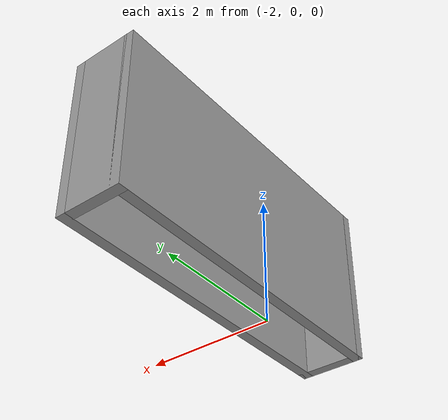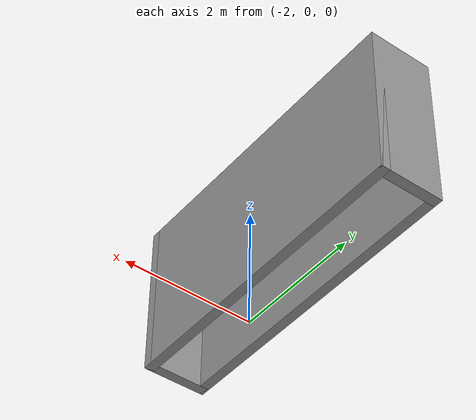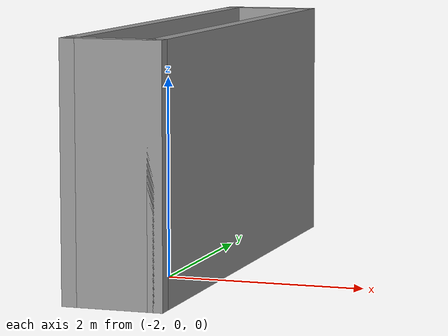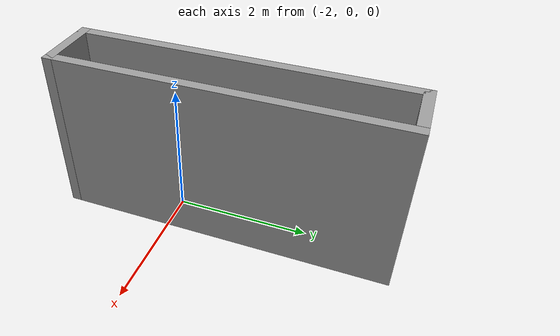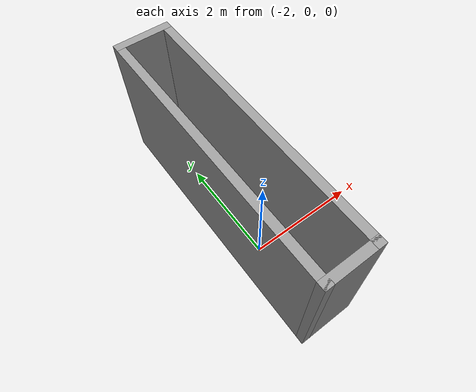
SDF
<?xml version='1.0'?>
<sdf version='1.7'>
  <model name='Shelf2'>
    <pose>-1.22628 0.823445 0 0 -0 0</pose>
    <link name='Wall_49'>
      <collision name='Wall_49_Collision'>
        <geometry>
          <box>
            <size>1 0.15 2.5</size>
          </box>
        </geometry>
        <pose>0 0 1.25 0 -0 0</pose>
      </collision>
      <visual name='Wall_49_Visual'>
        <pose>0 0 1.25 0 -0 0</pose>
        <geometry>
          <box>
            <size>1 0.15 2.5</size>
          </box>
        </geometry>
        <material>
          <script>
            <uri>file://media/materials/scripts/gazebo.material</uri>
            <name>Gazebo/Grey</name>
          </script>
          <ambient>1 1 1 1</ambient>
        </material>
        <meta>
          <layer>0</layer>
        </meta>
      </visual>
      <pose>-0.726277 2.425 0 0 -0 0</pose>
    </link>
    <link name='Wall_50'>
      <collision name='Wall_50_Collision'>
        <geometry>
          <box>
            <size>5 0.15 2.5</size>
          </box>
        </geometry>
        <pose>0 0 1.25 0 -0 0</pose>
      </collision>
      <visual name='Wall_50_Visual'>
        <pose>0 0 1.25 0 -0 0</pose>
        <geometry>
          <box>
            <size>5 0.15 2.5</size>
          </box>
        </geometry>
        <material>
          <script>
            <uri>file://media/materials/scripts/gazebo.material</uri>
            <name>Gazebo/Grey</name>
          </script>
          <ambient>1 1 1 1</ambient>
        </material>
        <meta>
          <layer>0</layer>
        </meta>
      </visual>
      <pose>-0.301277 0 0 0 -0 -1.5708</pose>
    </link>
    <link name='Wall_51'>
      <collision name='Wall_51_Collision'>
        <geometry>
          <box>
            <size>1 0.15 2.5</size>
          </box>
        </geometry>
        <pose>0 0 1.25 0 -0 0</pose>
      </collision>
      <visual name='Wall_51_Visual'>
        <pose>0 0 1.25 0 -0 0</pose>
        <geometry>
          <box>
            <size>1 0.15 2.5</size>
          </box>
        </geometry>
        <material>
          <script>
            <uri>file://media/materials/scripts/gazebo.material</uri>
            <name>Gazebo/Grey</name>
          </script>
          <ambient>1 1 1 1</ambient>
        </material>
        <meta>
          <layer>0</layer>
        </meta>
      </visual>
      <pose>-0.726277 -2.425 0 0 -0 3.14159</pose>
    </link>
    <link name='Wall_52'>
      <collision name='Wall_52_Collision'>
        <geometry>
          <box>
            <size>5 0.15 2.5</size>
          </box>
        </geometry>
        <pose>0 0 1.25 0 -0 0</pose>
      </collision>
      <visual name='Wall_52_Visual'>
        <pose>0 0 1.25 0 -0 0</pose>
        <geometry>
          <box>
            <size>5 0.15 2.5</size>
          </box>
        </geometry>
        <material>
          <script>
            <uri>file://media/materials/scripts/gazebo.material</uri>
            <name>Gazebo/Grey</name>
          </script>
          <ambient>1 1 1 1</ambient>
        </material>
        <meta>
          <layer>0</layer>
        </meta>
      </visual>
      <pose>-1.15128 0 0 0 -0 1.5708</pose>
    </link>
    <static>1</static>
  </model>
</sdf>
